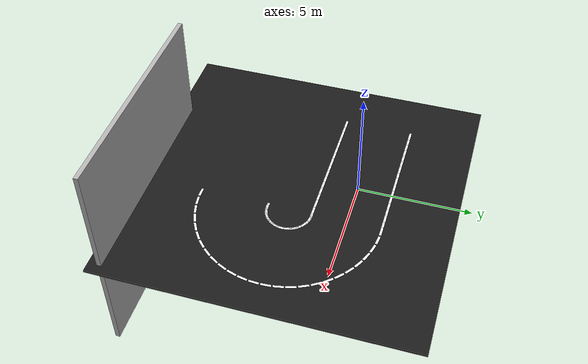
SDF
<sdf version="1.9">
 <world name="candy_cane_right">
  <physics name="1ms" type="ignored">
   <max_step_size>0.001</max_step_size>
   <real_time_factor>1.0</real_time_factor>
  </physics>
  <plugin filename="libgz-sim8-physics-system.so" name="gz::sim::systems::Physics"/>
  <plugin filename="gz-sim-sensors-system" name="gz::sim::systems::Sensors"/>
  <plugin filename="libgz-sim8-scene-broadcaster-system.so" name="gz::sim::systems::SceneBroadcaster"/>
  <include><uri>https://fuel.gazebosim.org/1.0/openrobotics/models/Sun</uri></include>
  <model name="candy_cane_right">
   <static>true</static>
   <link name="track_link">
    <collision name="track_collision">
     <pose>0.500 -2.500 -0.050 0 0 0</pose>
     <geometry><box><size>14.000 14.000 0.10</size></box></geometry>
     <surface><friction><ode><mu>1.2</mu><mu2>1.2</mu2></ode></friction></surface>
    </collision>
    <visual name="track_visual">
     <pose>0.500 -2.500 -0.050 0 0 0</pose>
     <geometry><box><size>14.000 14.000 0.10</size></box></geometry>
     <material>
      <ambient>0.08 0.08 0.08 1</ambient>
      <diffuse>0.10 0.10 0.10 1</diffuse>
      <specular>0.02 0.02 0.02 1</specular>
     </material>
    </visual>
    <visual name="outer_lane_000">
     <pose>-4.0000 1.5240 0.0010 0 0 0.000000</pose>
     <geometry><box><size>0.4500 0.1000 0.0050</size></box></geometry>
     <material><ambient>1 1 1 1</ambient><diffuse>1 1 1 1</diffuse><specular>0.1 0.1 0.1 1</specular></material>
    </visual>
    <visual name="outer_lane_001">
     <pose>-3.6190 1.5240 0.0010 0 0 0.000000</pose>
     <geometry><box><size>0.4500 0.1000 0.0050</size></box></geometry>
     <material><ambient>1 1 1 1</ambient><diffuse>1 1 1 1</diffuse><specular>0.1 0.1 0.1 1</specular></material>
    </visual>
    <visual name="outer_lane_002">
     <pose>-3.2380 1.5240 0.0010 0 0 0.000000</pose>
     <geometry><box><size>0.4500 0.1000 0.0050</size></box></geometry>
     <material><ambient>1 1 1 1</ambient><diffuse>1 1 1 1</diffuse><specular>0.1 0.1 0.1 1</specular></material>
    </visual>
    <visual name="outer_lane_003">
     <pose>-2.8570 1.5240 0.0010 0 0 0.000000</pose>
     <geometry><box><size>0.4500 0.1000 0.0050</size></box></geometry>
     <material><ambient>1 1 1 1</ambient><diffuse>1 1 1 1</diffuse><specular>0.1 0.1 0.1 1</specular></material>
    </visual>
    <visual name="outer_lane_004">
     <pose>-2.4760 1.5240 0.0010 0 0 0.000000</pose>
     <geometry><box><size>0.4500 0.1000 0.0050</size></box></geometry>
     <material><ambient>1 1 1 1</ambient><diffuse>1 1 1 1</diffuse><specular>0.1 0.1 0.1 1</specular></material>
    </visual>
    <visual name="outer_lane_005">
     <pose>-2.0950 1.5240 0.0010 0 0 0.000000</pose>
     <geometry><box><size>0.4500 0.1000 0.0050</size></box></geometry>
     <material><ambient>1 1 1 1</ambient><diffuse>1 1 1 1</diffuse><specular>0.1 0.1 0.1 1</specular></material>
    </visual>
    <visual name="outer_lane_006">
     <pose>-1.7140 1.5240 0.0010 0 0 0.000000</pose>
     <geometry><box><size>0.4500 0.1000 0.0050</size></box></geometry>
     <material><ambient>1 1 1 1</ambient><diffuse>1 1 1 1</diffuse><specular>0.1 0.1 0.1 1</specular></material>
    </visual>
    <visual name="outer_lane_007">
     <pose>-1.3330 1.5240 0.0010 0 0 0.000000</pose>
     <geometry><box><size>0.4500 0.1000 0.0050</size></box></geometry>
     <material><ambient>1 1 1 1</ambient><diffuse>1 1 1 1</diffuse><specular>0.1 0.1 0.1 1</specular></material>
    </visual>
    <visual name="outer_lane_008">
     <pose>-0.9520 1.5240 0.0010 0 0 0.000000</pose>
     <geometry><box><size>0.4500 0.1000 0.0050</size></box></geometry>
     <material><ambient>1 1 1 1</ambient><diffuse>1 1 1 1</diffuse><specular>0.1 0.1 0.1 1</specular></material>
    </visual>
    <visual name="outer_lane_009">
     <pose>-0.5710 1.5240 0.0010 0 0 0.000000</pose>
     <geometry><box><size>0.4500 0.1000 0.0050</size></box></geometry>
     <material><ambient>1 1 1 1</ambient><diffuse>1 1 1 1</diffuse><specular>0.1 0.1 0.1 1</specular></material>
    </visual>
    <visual name="outer_lane_010">
     <pose>-0.1900 1.5240 0.0010 0 0 0.000000</pose>
     <geometry><box><size>0.4500 0.1000 0.0050</size></box></geometry>
     <material><ambient>1 1 1 1</ambient><diffuse>1 1 1 1</diffuse><specular>0.1 0.1 0.1 1</specular></material>
    </visual>
    <visual name="outer_lane_011">
     <pose>0.1910 1.5240 0.0010 0 0 0.000000</pose>
     <geometry><box><size>0.4500 0.1000 0.0050</size></box></geometry>
     <material><ambient>1 1 1 1</ambient><diffuse>1 1 1 1</diffuse><specular>0.1 0.1 0.1 1</specular></material>
    </visual>
    <visual name="outer_lane_012">
     <pose>0.5720 1.5240 0.0010 0 0 0.000000</pose>
     <geometry><box><size>0.4500 0.1000 0.0050</size></box></geometry>
     <material><ambient>1 1 1 1</ambient><diffuse>1 1 1 1</diffuse><specular>0.1 0.1 0.1 1</specular></material>
    </visual>
    <visual name="outer_lane_013">
     <pose>0.9530 1.5240 0.0010 0 0 0.000000</pose>
     <geometry><box><size>0.4500 0.1000 0.0050</size></box></geometry>
     <material><ambient>1 1 1 1</ambient><diffuse>1 1 1 1</diffuse><specular>0.1 0.1 0.1 1</specular></material>
    </visual>
    <visual name="outer_lane_014">
     <pose>1.3340 1.5240 0.0010 0 0 0.000000</pose>
     <geometry><box><size>0.4500 0.1000 0.0050</size></box></geometry>
     <material><ambient>1 1 1 1</ambient><diffuse>1 1 1 1</diffuse><specular>0.1 0.1 0.1 1</specular></material>
    </visual>
    <visual name="outer_lane_015">
     <pose>1.7150 1.5240 0.0010 0 0 0.000000</pose>
     <geometry><box><size>0.4500 0.1000 0.0050</size></box></geometry>
     <material><ambient>1 1 1 1</ambient><diffuse>1 1 1 1</diffuse><specular>0.1 0.1 0.1 1</specular></material>
    </visual>
    <visual name="outer_lane_016">
     <pose>2.0960 1.5240 0.0010 0 0 0.000000</pose>
     <geometry><box><size>0.4500 0.1000 0.0050</size></box></geometry>
     <material><ambient>1 1 1 1</ambient><diffuse>1 1 1 1</diffuse><specular>0.1 0.1 0.1 1</specular></material>
    </visual>
    <visual name="inner_lane_000">
     <pose>-4.0000 -1.5240 0.0010 0 0 0.000000</pose>
     <geometry><box><size>0.4500 0.1000 0.0050</size></box></geometry>
     <material><ambient>1 1 1 1</ambient><diffuse>1 1 1 1</diffuse><specular>0.1 0.1 0.1 1</specular></material>
    </visual>
    <visual name="inner_lane_001">
     <pose>-3.6190 -1.5240 0.0010 0 0 0.000000</pose>
     <geometry><box><size>0.4500 0.1000 0.0050</size></box></geometry>
     <material><ambient>1 1 1 1</ambient><diffuse>1 1 1 1</diffuse><specular>0.1 0.1 0.1 1</specular></material>
    </visual>
    <visual name="inner_lane_002">
     <pose>-3.2380 -1.5240 0.0010 0 0 0.000000</pose>
     <geometry><box><size>0.4500 0.1000 0.0050</size></box></geometry>
     <material><ambient>1 1 1 1</ambient><diffuse>1 1 1 1</diffuse><specular>0.1 0.1 0.1 1</specular></material>
    </visual>
    <visual name="inner_lane_003">
     <pose>-2.8570 -1.5240 0.0010 0 0 0.000000</pose>
     <geometry><box><size>0.4500 0.1000 0.0050</size></box></geometry>
     <material><ambient>1 1 1 1</ambient><diffuse>1 1 1 1</diffuse><specular>0.1 0.1 0.1 1</specular></material>
    </visual>
    <visual name="inner_lane_004">
     <pose>-2.4760 -1.5240 0.0010 0 0 0.000000</pose>
     <geometry><box><size>0.4500 0.1000 0.0050</size></box></geometry>
     <material><ambient>1 1 1 1</ambient><diffuse>1 1 1 1</diffuse><specular>0.1 0.1 0.1 1</specular></material>
    </visual>
    <visual name="inner_lane_005">
     <pose>-2.0950 -1.5240 0.0010 0 0 0.000000</pose>
     <geometry><box><size>0.4500 0.1000 0.0050</size></box></geometry>
     <material><ambient>1 1 1 1</ambient><diffuse>1 1 1 1</diffuse><specular>0.1 0.1 0.1 1</specular></material>
    </visual>
    <visual name="inner_lane_006">
     <pose>-1.7140 -1.5240 0.0010 0 0 0.000000</pose>
     <geometry><box><size>0.4500 0.1000 0.0050</size></box></geometry>
     <material><ambient>1 1 1 1</ambient><diffuse>1 1 1 1</diffuse><specular>0.1 0.1 0.1 1</specular></material>
    </visual>
    <visual name="inner_lane_007">
     <pose>-1.3330 -1.5240 0.0010 0 0 0.000000</pose>
     <geometry><box><size>0.4500 0.1000 0.0050</size></box></geometry>
     <material><ambient>1 1 1 1</ambient><diffuse>1 1 1 1</diffuse><specular>0.1 0.1 0.1 1</specular></material>
    </visual>
    <visual name="inner_lane_008">
     <pose>-0.9520 -1.5240 0.0010 0 0 0.000000</pose>
     <geometry><box><size>0.4500 0.1000 0.0050</size></box></geometry>
     <material><ambient>1 1 1 1</ambient><diffuse>1 1 1 1</diffuse><specular>0.1 0.1 0.1 1</specular></material>
    </visual>
    <visual name="inner_lane_009">
     <pose>-0.5710 -1.5240 0.0010 0 0 0.000000</pose>
     <geometry><box><size>0.4500 0.1000 0.0050</size></box></geometry>
     <material><ambient>1 1 1 1</ambient><diffuse>1 1 1 1</diffuse><specular>0.1 0.1 0.1 1</specular></material>
    </visual>
    <visual name="inner_lane_010">
     <pose>-0.1900 -1.5240 0.0010 0 0 0.000000</pose>
     <geometry><box><size>0.4500 0.1000 0.0050</size></box></geometry>
     <material><ambient>1 1 1 1</ambient><diffuse>1 1 1 1</diffuse><specular>0.1 0.1 0.1 1</specular></material>
    </visual>
    <visual name="inner_lane_011">
     <pose>0.1910 -1.5240 0.0010 0 0 0.000000</pose>
     <geometry><box><size>0.4500 0.1000 0.0050</size></box></geometry>
     <material><ambient>1 1 1 1</ambient><diffuse>1 1 1 1</diffuse><specular>0.1 0.1 0.1 1</specular></material>
    </visual>
    <visual name="inner_lane_012">
     <pose>0.5720 -1.5240 0.0010 0 0 0.000000</pose>
     <geometry><box><size>0.4500 0.1000 0.0050</size></box></geometry>
     <material><ambient>1 1 1 1</ambient><diffuse>1 1 1 1</diffuse><specular>0.1 0.1 0.1 1</specular></material>
    </visual>
    <visual name="inner_lane_013">
     <pose>0.9530 -1.5240 0.0010 0 0 0.000000</pose>
     <geometry><box><size>0.4500 0.1000 0.0050</size></box></geometry>
     <material><ambient>1 1 1 1</ambient><diffuse>1 1 1 1</diffuse><specular>0.1 0.1 0.1 1</specular></material>
    </visual>
    <visual name="inner_lane_014">
     <pose>1.3340 -1.5240 0.0010 0 0 0.000000</pose>
     <geometry><box><size>0.4500 0.1000 0.0050</size></box></geometry>
     <material><ambient>1 1 1 1</ambient><diffuse>1 1 1 1</diffuse><specular>0.1 0.1 0.1 1</specular></material>
    </visual>
    <visual name="inner_lane_015">
     <pose>1.7150 -1.5240 0.0010 0 0 0.000000</pose>
     <geometry><box><size>0.4500 0.1000 0.0050</size></box></geometry>
     <material><ambient>1 1 1 1</ambient><diffuse>1 1 1 1</diffuse><specular>0.1 0.1 0.1 1</specular></material>
    </visual>
    <visual name="inner_lane_016">
     <pose>2.0960 -1.5240 0.0010 0 0 0.000000</pose>
     <geometry><box><size>0.4500 0.1000 0.0050</size></box></geometry>
     <material><ambient>1 1 1 1</ambient><diffuse>1 1 1 1</diffuse><specular>0.1 0.1 0.1 1</specular></material>
    </visual>
    <visual name="outer_lane_017">
     <pose>2.0960 1.5240 0.0010 0 0 0.000000</pose>
     <geometry><box><size>0.4500 0.1000 0.0050</size></box></geometry>
     <material><ambient>1 1 1 1</ambient><diffuse>1 1 1 1</diffuse><specular>0.1 0.1 0.1 1</specular></material>
    </visual>
    <visual name="inner_lane_017">
     <pose>2.0960 -1.5240 0.0010 0 0 0.000000</pose>
     <geometry><box><size>0.4500 0.1000 0.0050</size></box></geometry>
     <material><ambient>1 1 1 1</ambient><diffuse>1 1 1 1</diffuse><specular>0.1 0.1 0.1 1</specular></material>
    </visual>
    <visual name="outer_lane_018">
     <pose>2.6003 1.4923 0.0010 0 0 -0.125664</pose>
     <geometry><box><size>0.4500 0.1000 0.0050</size></box></geometry>
     <material><ambient>1 1 1 1</ambient><diffuse>1 1 1 1</diffuse><specular>0.1 0.1 0.1 1</specular></material>
    </visual>
    <visual name="inner_lane_018">
     <pose>2.2183 -1.5317 0.0010 0 0 -0.125664</pose>
     <geometry><box><size>0.4500 0.1000 0.0050</size></box></geometry>
     <material><ambient>1 1 1 1</ambient><diffuse>1 1 1 1</diffuse><specular>0.1 0.1 0.1 1</specular></material>
    </visual>
    <visual name="outer_lane_019">
     <pose>3.0967 1.3976 0.0010 0 0 -0.251327</pose>
     <geometry><box><size>0.4500 0.1000 0.0050</size></box></geometry>
     <material><ambient>1 1 1 1</ambient><diffuse>1 1 1 1</diffuse><specular>0.1 0.1 0.1 1</specular></material>
    </visual>
    <visual name="inner_lane_019">
     <pose>2.3387 -1.5547 0.0010 0 0 -0.251327</pose>
     <geometry><box><size>0.4500 0.1000 0.0050</size></box></geometry>
     <material><ambient>1 1 1 1</ambient><diffuse>1 1 1 1</diffuse><specular>0.1 0.1 0.1 1</specular></material>
    </visual>
    <visual name="outer_lane_020">
     <pose>3.5773 1.2414 0.0010 0 0 -0.376991</pose>
     <geometry><box><size>0.4500 0.1000 0.0050</size></box></geometry>
     <material><ambient>1 1 1 1</ambient><diffuse>1 1 1 1</diffuse><specular>0.1 0.1 0.1 1</specular></material>
    </visual>
    <visual name="inner_lane_020">
     <pose>2.4553 -1.5925 0.0010 0 0 -0.376991</pose>
     <geometry><box><size>0.4500 0.1000 0.0050</size></box></geometry>
     <material><ambient>1 1 1 1</ambient><diffuse>1 1 1 1</diffuse><specular>0.1 0.1 0.1 1</specular></material>
    </visual>
    <visual name="outer_lane_021">
     <pose>4.0346 1.0263 0.0010 0 0 -0.502655</pose>
     <geometry><box><size>0.4500 0.1000 0.0050</size></box></geometry>
     <material><ambient>1 1 1 1</ambient><diffuse>1 1 1 1</diffuse><specular>0.1 0.1 0.1 1</specular></material>
    </visual>
    <visual name="inner_lane_021">
     <pose>2.5662 -1.6447 0.0010 0 0 -0.502655</pose>
     <geometry><box><size>0.4500 0.1000 0.0050</size></box></geometry>
     <material><ambient>1 1 1 1</ambient><diffuse>1 1 1 1</diffuse><specular>0.1 0.1 0.1 1</specular></material>
    </visual>
    <visual name="outer_lane_022">
     <pose>4.4612 0.7555 0.0010 0 0 -0.628319</pose>
     <geometry><box><size>0.4500 0.1000 0.0050</size></box></geometry>
     <material><ambient>1 1 1 1</ambient><diffuse>1 1 1 1</diffuse><specular>0.1 0.1 0.1 1</specular></material>
    </visual>
    <visual name="inner_lane_022">
     <pose>2.6697 -1.7104 0.0010 0 0 -0.628319</pose>
     <geometry><box><size>0.4500 0.1000 0.0050</size></box></geometry>
     <material><ambient>1 1 1 1</ambient><diffuse>1 1 1 1</diffuse><specular>0.1 0.1 0.1 1</specular></material>
    </visual>
    <visual name="outer_lane_023">
     <pose>4.8506 0.4334 0.0010 0 0 -0.753982</pose>
     <geometry><box><size>0.4500 0.1000 0.0050</size></box></geometry>
     <material><ambient>1 1 1 1</ambient><diffuse>1 1 1 1</diffuse><specular>0.1 0.1 0.1 1</specular></material>
    </visual>
    <visual name="inner_lane_023">
     <pose>2.7641 -1.7885 0.0010 0 0 -0.753982</pose>
     <geometry><box><size>0.4500 0.1000 0.0050</size></box></geometry>
     <material><ambient>1 1 1 1</ambient><diffuse>1 1 1 1</diffuse><specular>0.1 0.1 0.1 1</specular></material>
    </visual>
    <visual name="outer_lane_024">
     <pose>5.1965 0.0650 0.0010 0 0 -0.879646</pose>
     <geometry><box><size>0.4500 0.1000 0.0050</size></box></geometry>
     <material><ambient>1 1 1 1</ambient><diffuse>1 1 1 1</diffuse><specular>0.1 0.1 0.1 1</specular></material>
    </visual>
    <visual name="inner_lane_024">
     <pose>2.8480 -1.8779 0.0010 0 0 -0.879646</pose>
     <geometry><box><size>0.4500 0.1000 0.0050</size></box></geometry>
     <material><ambient>1 1 1 1</ambient><diffuse>1 1 1 1</diffuse><specular>0.1 0.1 0.1 1</specular></material>
    </visual>
    <visual name="outer_lane_025">
     <pose>5.4936 -0.3438 0.0010 0 0 -1.005310</pose>
     <geometry><box><size>0.4500 0.1000 0.0050</size></box></geometry>
     <material><ambient>1 1 1 1</ambient><diffuse>1 1 1 1</diffuse><specular>0.1 0.1 0.1 1</specular></material>
    </visual>
    <visual name="inner_lane_025">
     <pose>2.9201 -1.9770 0.0010 0 0 -1.005310</pose>
     <geometry><box><size>0.4500 0.1000 0.0050</size></box></geometry>
     <material><ambient>1 1 1 1</ambient><diffuse>1 1 1 1</diffuse><specular>0.1 0.1 0.1 1</specular></material>
    </visual>
    <visual name="outer_lane_026">
     <pose>5.7370 -0.7867 0.0010 0 0 -1.130973</pose>
     <geometry><box><size>0.4500 0.1000 0.0050</size></box></geometry>
     <material><ambient>1 1 1 1</ambient><diffuse>1 1 1 1</diffuse><specular>0.1 0.1 0.1 1</specular></material>
    </visual>
    <visual name="inner_lane_026">
     <pose>2.9791 -2.0844 0.0010 0 0 -1.130973</pose>
     <geometry><box><size>0.4500 0.1000 0.0050</size></box></geometry>
     <material><ambient>1 1 1 1</ambient><diffuse>1 1 1 1</diffuse><specular>0.1 0.1 0.1 1</specular></material>
    </visual>
    <visual name="outer_lane_027">
     <pose>5.9231 -1.2565 0.0010 0 0 -1.256637</pose>
     <geometry><box><size>0.4500 0.1000 0.0050</size></box></geometry>
     <material><ambient>1 1 1 1</ambient><diffuse>1 1 1 1</diffuse><specular>0.1 0.1 0.1 1</specular></material>
    </visual>
    <visual name="inner_lane_027">
     <pose>3.0242 -2.1984 0.0010 0 0 -1.256637</pose>
     <geometry><box><size>0.4500 0.1000 0.0050</size></box></geometry>
     <material><ambient>1 1 1 1</ambient><diffuse>1 1 1 1</diffuse><specular>0.1 0.1 0.1 1</specular></material>
    </visual>
    <visual name="outer_lane_028">
     <pose>6.0487 -1.7460 0.0010 0 0 -1.382301</pose>
     <geometry><box><size>0.4500 0.1000 0.0050</size></box></geometry>
     <material><ambient>1 1 1 1</ambient><diffuse>1 1 1 1</diffuse><specular>0.1 0.1 0.1 1</specular></material>
    </visual>
    <visual name="inner_lane_028">
     <pose>3.0547 -2.3171 0.0010 0 0 -1.382301</pose>
     <geometry><box><size>0.4500 0.1000 0.0050</size></box></geometry>
     <material><ambient>1 1 1 1</ambient><diffuse>1 1 1 1</diffuse><specular>0.1 0.1 0.1 1</specular></material>
    </visual>
    <visual name="outer_lane_029">
     <pose>6.1121 -2.2473 0.0010 0 0 -1.507964</pose>
     <geometry><box><size>0.4500 0.1000 0.0050</size></box></geometry>
     <material><ambient>1 1 1 1</ambient><diffuse>1 1 1 1</diffuse><specular>0.1 0.1 0.1 1</specular></material>
    </visual>
    <visual name="inner_lane_029">
     <pose>3.0701 -2.4387 0.0010 0 0 -1.507964</pose>
     <geometry><box><size>0.4500 0.1000 0.0050</size></box></geometry>
     <material><ambient>1 1 1 1</ambient><diffuse>1 1 1 1</diffuse><specular>0.1 0.1 0.1 1</specular></material>
    </visual>
    <visual name="outer_lane_030">
     <pose>6.1121 -2.7527 0.0010 0 0 -1.633628</pose>
     <geometry><box><size>0.4500 0.1000 0.0050</size></box></geometry>
     <material><ambient>1 1 1 1</ambient><diffuse>1 1 1 1</diffuse><specular>0.1 0.1 0.1 1</specular></material>
    </visual>
    <visual name="inner_lane_030">
     <pose>3.0701 -2.5613 0.0010 0 0 -1.633628</pose>
     <geometry><box><size>0.4500 0.1000 0.0050</size></box></geometry>
     <material><ambient>1 1 1 1</ambient><diffuse>1 1 1 1</diffuse><specular>0.1 0.1 0.1 1</specular></material>
    </visual>
    <visual name="outer_lane_031">
     <pose>6.0487 -3.2540 0.0010 0 0 -1.759292</pose>
     <geometry><box><size>0.4500 0.1000 0.0050</size></box></geometry>
     <material><ambient>1 1 1 1</ambient><diffuse>1 1 1 1</diffuse><specular>0.1 0.1 0.1 1</specular></material>
    </visual>
    <visual name="inner_lane_031">
     <pose>3.0547 -2.6829 0.0010 0 0 -1.759292</pose>
     <geometry><box><size>0.4500 0.1000 0.0050</size></box></geometry>
     <material><ambient>1 1 1 1</ambient><diffuse>1 1 1 1</diffuse><specular>0.1 0.1 0.1 1</specular></material>
    </visual>
    <visual name="outer_lane_032">
     <pose>5.9231 -3.7435 0.0010 0 0 -1.884956</pose>
     <geometry><box><size>0.4500 0.1000 0.0050</size></box></geometry>
     <material><ambient>1 1 1 1</ambient><diffuse>1 1 1 1</diffuse><specular>0.1 0.1 0.1 1</specular></material>
    </visual>
    <visual name="inner_lane_032">
     <pose>3.0242 -2.8016 0.0010 0 0 -1.884956</pose>
     <geometry><box><size>0.4500 0.1000 0.0050</size></box></geometry>
     <material><ambient>1 1 1 1</ambient><diffuse>1 1 1 1</diffuse><specular>0.1 0.1 0.1 1</specular></material>
    </visual>
    <visual name="outer_lane_033">
     <pose>5.7370 -4.2133 0.0010 0 0 -2.010619</pose>
     <geometry><box><size>0.4500 0.1000 0.0050</size></box></geometry>
     <material><ambient>1 1 1 1</ambient><diffuse>1 1 1 1</diffuse><specular>0.1 0.1 0.1 1</specular></material>
    </visual>
    <visual name="inner_lane_033">
     <pose>2.9791 -2.9156 0.0010 0 0 -2.010619</pose>
     <geometry><box><size>0.4500 0.1000 0.0050</size></box></geometry>
     <material><ambient>1 1 1 1</ambient><diffuse>1 1 1 1</diffuse><specular>0.1 0.1 0.1 1</specular></material>
    </visual>
    <visual name="outer_lane_034">
     <pose>5.4936 -4.6562 0.0010 0 0 -2.136283</pose>
     <geometry><box><size>0.4500 0.1000 0.0050</size></box></geometry>
     <material><ambient>1 1 1 1</ambient><diffuse>1 1 1 1</diffuse><specular>0.1 0.1 0.1 1</specular></material>
    </visual>
    <visual name="inner_lane_034">
     <pose>2.9201 -3.0230 0.0010 0 0 -2.136283</pose>
     <geometry><box><size>0.4500 0.1000 0.0050</size></box></geometry>
     <material><ambient>1 1 1 1</ambient><diffuse>1 1 1 1</diffuse><specular>0.1 0.1 0.1 1</specular></material>
    </visual>
    <visual name="outer_lane_035">
     <pose>5.1965 -5.0650 0.0010 0 0 -2.261947</pose>
     <geometry><box><size>0.4500 0.1000 0.0050</size></box></geometry>
     <material><ambient>1 1 1 1</ambient><diffuse>1 1 1 1</diffuse><specular>0.1 0.1 0.1 1</specular></material>
    </visual>
    <visual name="inner_lane_035">
     <pose>2.8480 -3.1221 0.0010 0 0 -2.261947</pose>
     <geometry><box><size>0.4500 0.1000 0.0050</size></box></geometry>
     <material><ambient>1 1 1 1</ambient><diffuse>1 1 1 1</diffuse><specular>0.1 0.1 0.1 1</specular></material>
    </visual>
    <visual name="outer_lane_036">
     <pose>4.8506 -5.4334 0.0010 0 0 -2.387610</pose>
     <geometry><box><size>0.4500 0.1000 0.0050</size></box></geometry>
     <material><ambient>1 1 1 1</ambient><diffuse>1 1 1 1</diffuse><specular>0.1 0.1 0.1 1</specular></material>
    </visual>
    <visual name="inner_lane_036">
     <pose>2.7641 -3.2115 0.0010 0 0 -2.387610</pose>
     <geometry><box><size>0.4500 0.1000 0.0050</size></box></geometry>
     <material><ambient>1 1 1 1</ambient><diffuse>1 1 1 1</diffuse><specular>0.1 0.1 0.1 1</specular></material>
    </visual>
    <visual name="outer_lane_037">
     <pose>4.4612 -5.7555 0.0010 0 0 -2.513274</pose>
     <geometry><box><size>0.4500 0.1000 0.0050</size></box></geometry>
     <material><ambient>1 1 1 1</ambient><diffuse>1 1 1 1</diffuse><specular>0.1 0.1 0.1 1</specular></material>
    </visual>
    <visual name="inner_lane_037">
     <pose>2.6697 -3.2896 0.0010 0 0 -2.513274</pose>
     <geometry><box><size>0.4500 0.1000 0.0050</size></box></geometry>
     <material><ambient>1 1 1 1</ambient><diffuse>1 1 1 1</diffuse><specular>0.1 0.1 0.1 1</specular></material>
    </visual>
    <visual name="outer_lane_038">
     <pose>4.0346 -6.0263 0.0010 0 0 -2.638938</pose>
     <geometry><box><size>0.4500 0.1000 0.0050</size></box></geometry>
     <material><ambient>1 1 1 1</ambient><diffuse>1 1 1 1</diffuse><specular>0.1 0.1 0.1 1</specular></material>
    </visual>
    <visual name="inner_lane_038">
     <pose>2.5662 -3.3553 0.0010 0 0 -2.638938</pose>
     <geometry><box><size>0.4500 0.1000 0.0050</size></box></geometry>
     <material><ambient>1 1 1 1</ambient><diffuse>1 1 1 1</diffuse><specular>0.1 0.1 0.1 1</specular></material>
    </visual>
    <visual name="outer_lane_039">
     <pose>3.5773 -6.2414 0.0010 0 0 -2.764602</pose>
     <geometry><box><size>0.4500 0.1000 0.0050</size></box></geometry>
     <material><ambient>1 1 1 1</ambient><diffuse>1 1 1 1</diffuse><specular>0.1 0.1 0.1 1</specular></material>
    </visual>
    <visual name="inner_lane_039">
     <pose>2.4553 -3.4075 0.0010 0 0 -2.764602</pose>
     <geometry><box><size>0.4500 0.1000 0.0050</size></box></geometry>
     <material><ambient>1 1 1 1</ambient><diffuse>1 1 1 1</diffuse><specular>0.1 0.1 0.1 1</specular></material>
    </visual>
    <visual name="outer_lane_040">
     <pose>3.0967 -6.3976 0.0010 0 0 -2.890265</pose>
     <geometry><box><size>0.4500 0.1000 0.0050</size></box></geometry>
     <material><ambient>1 1 1 1</ambient><diffuse>1 1 1 1</diffuse><specular>0.1 0.1 0.1 1</specular></material>
    </visual>
    <visual name="inner_lane_040">
     <pose>2.3387 -3.4453 0.0010 0 0 -2.890265</pose>
     <geometry><box><size>0.4500 0.1000 0.0050</size></box></geometry>
     <material><ambient>1 1 1 1</ambient><diffuse>1 1 1 1</diffuse><specular>0.1 0.1 0.1 1</specular></material>
    </visual>
    <visual name="outer_lane_041">
     <pose>2.6003 -6.4923 0.0010 0 0 -3.015929</pose>
     <geometry><box><size>0.4500 0.1000 0.0050</size></box></geometry>
     <material><ambient>1 1 1 1</ambient><diffuse>1 1 1 1</diffuse><specular>0.1 0.1 0.1 1</specular></material>
    </visual>
    <visual name="inner_lane_041">
     <pose>2.2183 -3.4683 0.0010 0 0 -3.015929</pose>
     <geometry><box><size>0.4500 0.1000 0.0050</size></box></geometry>
     <material><ambient>1 1 1 1</ambient><diffuse>1 1 1 1</diffuse><specular>0.1 0.1 0.1 1</specular></material>
    </visual>
    <visual name="outer_lane_042">
     <pose>2.0960 -6.5240 0.0010 0 0 -3.141593</pose>
     <geometry><box><size>0.4500 0.1000 0.0050</size></box></geometry>
     <material><ambient>1 1 1 1</ambient><diffuse>1 1 1 1</diffuse><specular>0.1 0.1 0.1 1</specular></material>
    </visual>
    <visual name="inner_lane_042">
     <pose>2.0960 -3.4760 0.0010 0 0 -3.141593</pose>
     <geometry><box><size>0.4500 0.1000 0.0050</size></box></geometry>
     <material><ambient>1 1 1 1</ambient><diffuse>1 1 1 1</diffuse><specular>0.1 0.1 0.1 1</specular></material>
    </visual>
   </link>
  </model>
  <model name="rf2o_wall_0">
   <static>true</static>
   <pose>2.0960 -9.0 0.0010 0 0 -3.141593</pose>
   <link name="link">
    <collision name="collision"><geometry><box><size>10.0 0.2 10.0</size></box></geometry></collision>
    <visual name="visual">
     <geometry><box><size>10.0 0.2 10.0</size></box></geometry>
     <material><ambient>0.7 0.7 0.7 1</ambient><diffuse>0.7 0.7 0.7 1</diffuse></material>
    </visual>
   </link>
  </model>
 </world>
</sdf>
